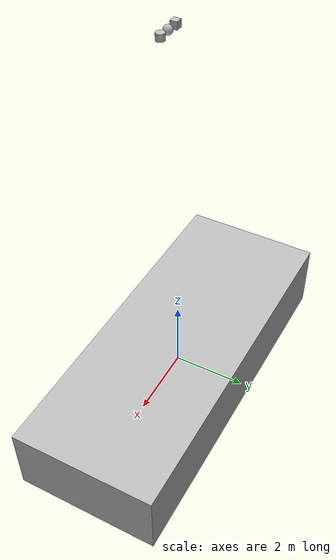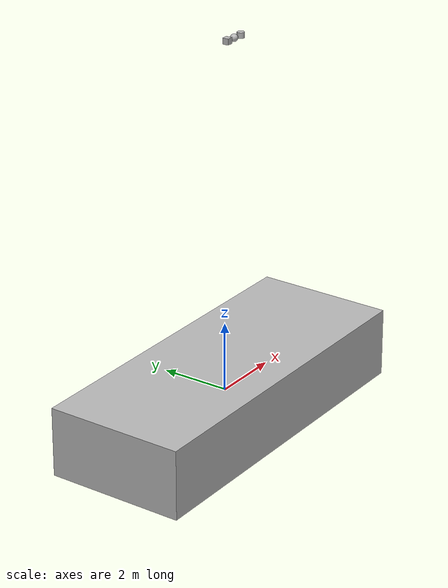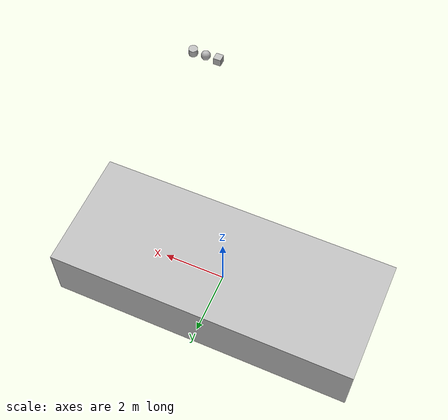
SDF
<sdf version="1.6">
 <world name="waves">
  <scene>
   <sky>
    <time>10</time>
    <sunrise>6</sunrise>
    <sunset>18</sunset>
    <clouds><speed>12</speed><direction>1.57079</direction></clouds>
   </sky>
   <grid>false</grid>
   <origin_visual>false</origin_visual>
  </scene>
  <model name="1_box">
   <pose>0.1 0 10 0 0 0</pose>
   <static>False</static>
   <link name="link">
    <visual name="visual"><geometry><box><size>0.171 0.171 0.171</size></box></geometry></visual>
    <collision name="collision"><geometry><box><size>0.171 0.171 0.171</size></box></geometry></collision>
    <inertial>
     <mass>2</mass>
     <inertia>
      <ixx>0.009708012</ixx>
      <ixy>0</ixy>
      <ixz>0</ixz>
      <iyy>0.009708012</iyy>
      <iyz>0</iyz>
      <izz>0.009708012</izz>
     </inertia>
    </inertial>
   </link>
  </model>
  <model name="1_sphere">
   <pose>0.4 0 10 0 0 0</pose>
   <static>False</static>
   <link name="link">
    <visual name="visual"><geometry><sphere><radius>0.106</radius></sphere></geometry></visual>
    <collision name="collision"><geometry><sphere><radius>0.106</radius></sphere></geometry></collision>
    <inertial>
     <mass>2</mass>
     <inertia>
      <ixx>0.0089888</ixx>
      <ixy>0</ixy>
      <ixz>0</ixz>
      <iyy>0.0089888</iyy>
      <iyz>0</iyz>
      <izz>0.0089888</izz>
     </inertia>
    </inertial>
   </link>
  </model>
  <model name="1_cylinder">
   <pose>0.7 0 10 0 0 0</pose>
   <static>False</static>
   <link name="link">
    <visual name="visual">
     <geometry><cylinder><radius>0.1</radius><length>0.159</length></cylinder></geometry>
    </visual>
    <collision name="collision">
     <geometry><cylinder><radius>0.1</radius><length>0.159</length></cylinder></geometry>
    </collision>
    <inertial>
     <mass>2</mass>
     <inertia>
      <ixx>0.0092134963146</ixx>
      <ixy>0</ixy>
      <ixz>0</ixz>
      <iyy>0.0092134963146</iyy>
      <iyz>0</iyz>
      <izz>0.01</izz>
     </inertia>
    </inertial>
   </link>
  </model>
  <model name="box">
   <static>false</static>
   <plugin name="hydrodynamics" filename="libHydrodynamicsPlugin.so">
    <wave_model>ocean_waves</wave_model>
    <damping_on>true</damping_on>
    <viscous_drag_on>true</viscous_drag_on>
    <pressure_drag_on>true</pressure_drag_on>
    <cDampL1>1.0E-6</cDampL1>
    <cDampL2>1.0E-6</cDampL2>
    <cDampR1>1.0E-6</cDampR1>
    <cDampR2>1.0E-6</cDampR2>
    <cPDrag1>1.0E+2</cPDrag1>
    <cPDrag2>1.0E+2</cPDrag2>
    <fPDrag>0.4</fPDrag>
    <cSDrag1>1.0E+2</cSDrag1>
    <cSDrag2>1.0E+2</cSDrag2>
    <fSDrag>0.4</fSDrag>
    <vRDrag>1.0</vRDrag>
    <markers>
     <update_rate>30</update_rate>
     <water_patch>false</water_patch>
     <waterline>false</waterline>
     <underwater_surface>false</underwater_surface>
    </markers>
   </plugin>
   <link name="base_link">
    <visual name="base_visual"><geometry><box><size>10 4 2</size></box></geometry></visual>
    <collision name="base_collision"><geometry><box><size>10 4 2</size></box></geometry></collision>
    <inertial>
     <mass>20000</mass>
     <inertia>
      <ixx>33333</ixx>
      <ixy>0.0</ixy>
      <ixz>0.0</ixz>
      <iyy>173333</iyy>
      <iyz>0.0</iyz>
      <izz>193333</izz>
     </inertia>
    </inertial>
   </link>
  </model>
 </world>
</sdf>
